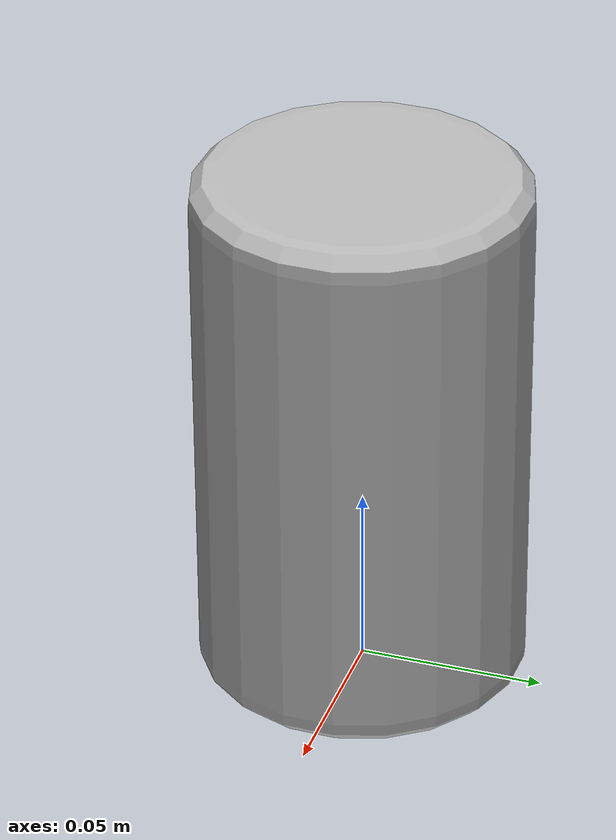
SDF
<?xml version="1.0" ?>
<sdf version="1.6">
  <model name="aws_robomaker_retail_SmartSpeakerTall_01">
    <link name="link">
      <inertial>
        <mass>0.821</mass>
        <inertia>
          <ixx>0.05586534</ixx>
          <ixy>0</ixy>
          <ixz>0</ixz>
          <iyy>0.0558653</iyy>
          <iyz>0</iyz>
          <izz>0.01</izz>
        </inertia>
      </inertial>
      <collision name="collision">
        <geometry>
          <mesh>
            <uri>file://models/aws_robomaker_retail_SmartSpeakerTall_01/meshes/aws_SmartSpeakerTall_01_collision.DAE</uri>
            <scale>1 1 1</scale>
          </mesh>
        </geometry>
      </collision>
      <visual name="visual">
	    <geometry>
          <mesh>
            <uri>file://models/aws_robomaker_retail_SmartSpeakerTall_01/meshes/aws_SmartSpeakerTall_01_visual.DAE</uri>
          </mesh>
        </geometry>
        <meta>
          <layer>1</layer>
        </meta>
      </visual>
</link>
  </model>
</sdf>
